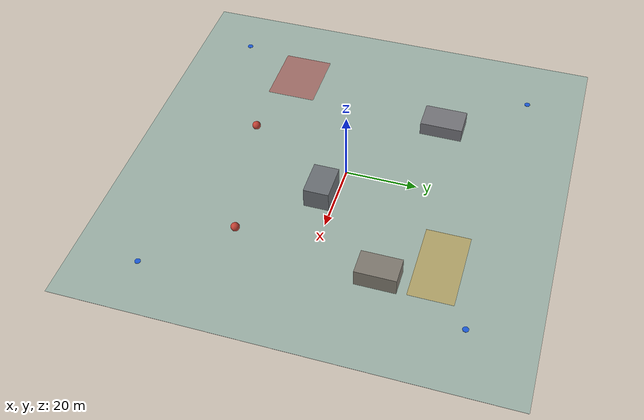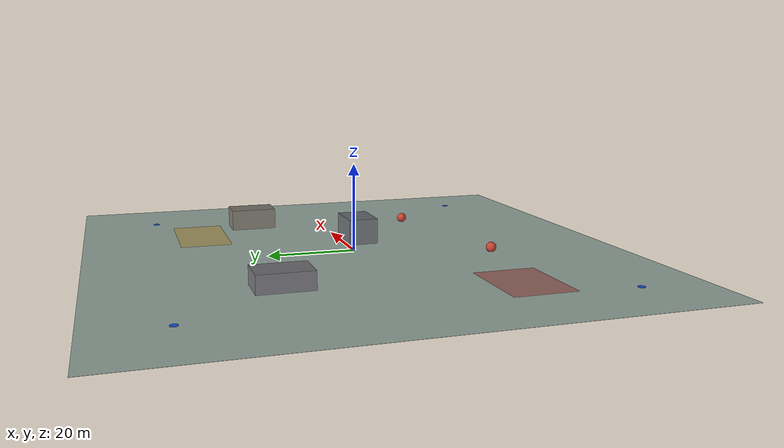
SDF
<?xml version="1.0" ?>
<sdf version="1.7">
  <world name="wkr_test_field_light">
    <physics type="ode">
      <max_step_size>0.02</max_step_size>
      <real_time_factor>1.0</real_time_factor>
    </physics>
    <scene>
      <ambient>0.55 0.55 0.55 1</ambient>
      <background>0.78 0.82 0.86 1</background>
      <shadows>false</shadows>
    </scene>
    <model name="mission_area_120x120">
      <static>true</static>
      <pose>0 0 0 0 0 0</pose>
      <link name="link">
        <collision name="ground_collision">
          <geometry><box><size>120 120 0.05</size></box></geometry>
        </collision>
        <visual name="ground_visual">
          <geometry><box><size>120 120 0.05</size></box></geometry>
          <material><ambient>0.62 0.70 0.66 1</ambient><diffuse>0.62 0.70 0.66 1</diffuse></material>
        </visual>
      </link>
    </model>
    <!-- Static obstacle blocks. Scenario difficulty is controlled by launch/config parameters. -->
    <model name="static_obstacle_north"><static>true</static><pose>-25 22 2 0 0 0</pose><link name="link"><collision name="collision"><geometry><box><size>8 12 4</size></box></geometry></collision><visual name="visual"><geometry><box><size>8 12 4</size></box></geometry><material><ambient>0.46 0.46 0.48 1</ambient></material></visual></link></model>
    <model name="static_obstacle_center"><static>true</static><pose>10 -4 3 0 0 0</pose><link name="link"><collision name="collision"><geometry><box><size>10 7 6</size></box></geometry></collision><visual name="visual"><geometry><box><size>10 7 6</size></box></geometry><material><ambient>0.42 0.44 0.46 1</ambient></material></visual></link></model>
    <model name="static_obstacle_east"><static>true</static><pose>33 18 2.5 0 0 0</pose><link name="link"><collision name="collision"><geometry><box><size>7 11 5</size></box></geometry></collision><visual name="visual"><geometry><box><size>7 11 5</size></box></geometry><material><ambient>0.50 0.48 0.44 1</ambient></material></visual></link></model>
    <model name="dynamic_obstacle_marker_1"><static>false</static><pose>-10 -30 1 0 0 0</pose><link name="link"><inertial><mass>1</mass></inertial><collision name="collision"><geometry><sphere><radius>1.2</radius></sphere></geometry></collision><visual name="visual"><geometry><sphere><radius>1.2</radius></sphere></geometry><material><ambient>0.75 0.25 0.20 1</ambient></material></visual></link></model>
    <model name="dynamic_obstacle_marker_2"><static>false</static><pose>28 -22 1 0 0 0</pose><link name="link"><inertial><mass>1</mass></inertial><collision name="collision"><geometry><sphere><radius>1.2</radius></sphere></geometry></collision><visual name="visual"><geometry><sphere><radius>1.2</radius></sphere></geometry><material><ambient>0.75 0.25 0.20 1</ambient></material></visual></link></model>
    <!-- Restricted and risk zones are lightweight visual markers used by documentation and coverage calculations. -->
    <model name="restricted_zone"><static>true</static><pose>-35 -25 0.04 0 0 0</pose><link name="link"><visual name="visual"><geometry><box><size>18 14 0.04</size></box></geometry><material><ambient>0.70 0.15 0.15 0.45</ambient><diffuse>0.70 0.15 0.15 0.45</diffuse></material></visual></link></model>
    <model name="risk_zone"><static>true</static><pose>25 32 0.05 0 0 0</pose><link name="link"><visual name="visual"><geometry><box><size>22 12 0.04</size></box></geometry><material><ambient>0.85 0.62 0.16 0.45</ambient><diffuse>0.85 0.62 0.16 0.45</diffuse></material></visual></link></model>
    <model name="waypoint_cluster"><static>true</static><pose>0 0 0 0 0 0</pose><link name="link">
      <visual name="wp1"><pose>-45 -45 0.1 0 0 0</pose><geometry><cylinder><radius>0.8</radius><length>0.1</length></cylinder></geometry><material><ambient>0.10 0.35 0.85 1</ambient></material></visual>
      <visual name="wp2"><pose>45 -42 0.1 0 0 0</pose><geometry><cylinder><radius>0.8</radius><length>0.1</length></cylinder></geometry><material><ambient>0.10 0.35 0.85 1</ambient></material></visual>
      <visual name="wp3"><pose>42 42 0.1 0 0 0</pose><geometry><cylinder><radius>0.8</radius><length>0.1</length></cylinder></geometry><material><ambient>0.10 0.35 0.85 1</ambient></material></visual>
      <visual name="wp4"><pose>-42 44 0.1 0 0 0</pose><geometry><cylinder><radius>0.8</radius><length>0.1</length></cylinder></geometry><material><ambient>0.10 0.35 0.85 1</ambient></material></visual>
    </link></model>
    <light name="sun" type="directional"><pose>0 0 80 0 0 0</pose><diffuse>0.9 0.9 0.9 1</diffuse><direction>-0.4 0.3 -1</direction></light>
    <plugin filename="gz-sim-physics-system" name="gz::sim::systems::Physics"></plugin>
  </world>
</sdf>
